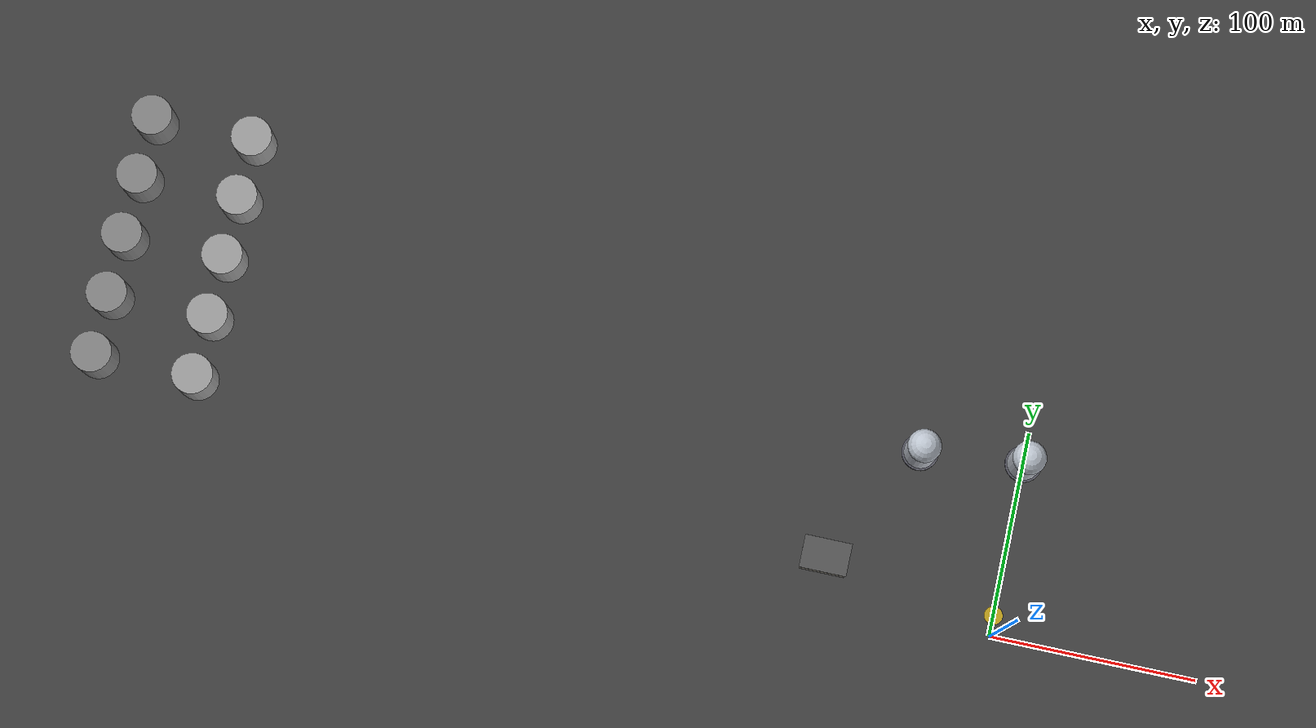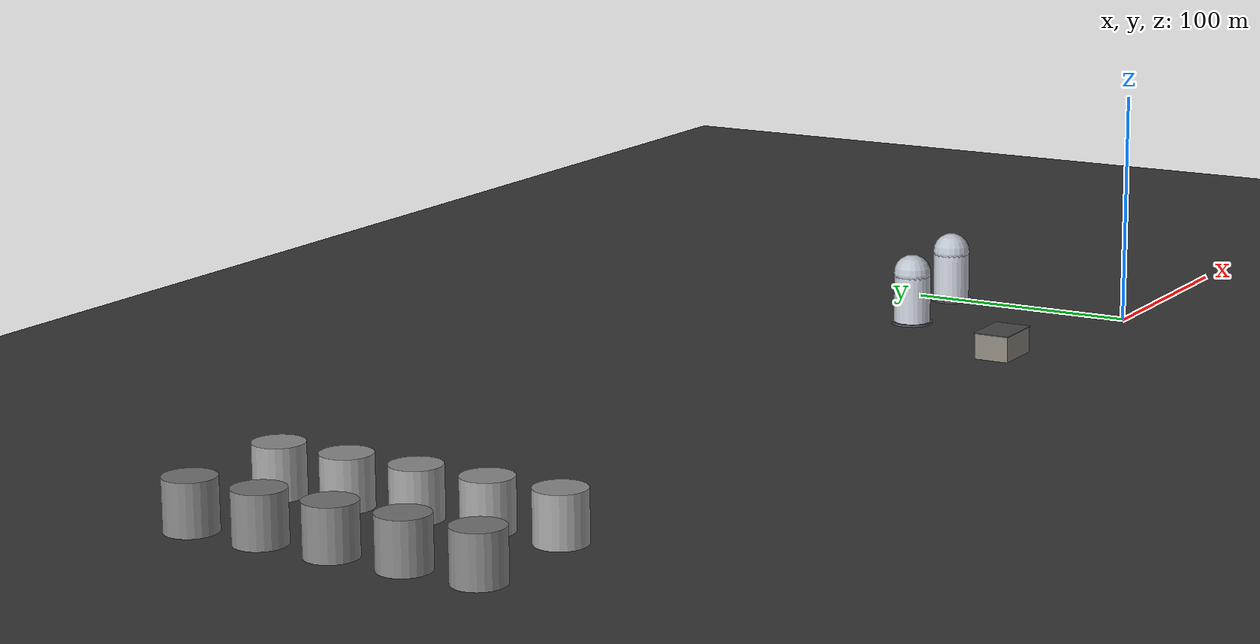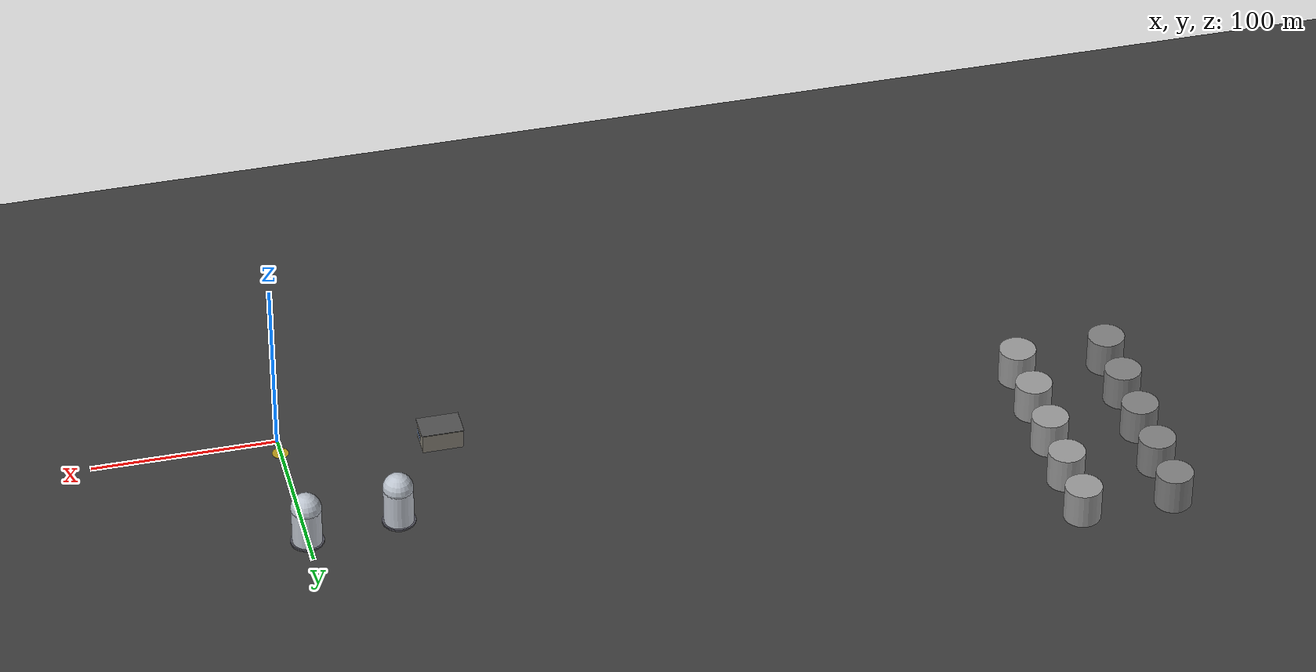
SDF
<sdf version="1.9">
 <world name="lng_terminal">
  <model name="ground">
   <static>true</static>
   <pose>0 0 -0.05 0 0 0</pose>
   <link name="l">
    <collision name="c"><geometry><box><size>2000 2000 0.1</size></box></geometry></collision>
    <visual name="v">
     <geometry><box><size>2000 2000 0.1</size></box></geometry>
     <material>
      <ambient>0.18 0.18 0.18 1</ambient>
      <diffuse>0.24 0.24 0.24 1</diffuse>
      <specular>0.03 0.03 0.03 1</specular>
      <pbr><metal><roughness>0.96</roughness><metalness>0.0</metalness></metal></pbr>
     </material>
    </visual>
   </link>
  </model>
  <model name="drone_d2">
   <static>false</static>
   <pose>0 10 0.18 0 0 0.4</pose>
   <link name="l">
    <gravity>false</gravity>
    <inertial>
     <mass>0.8</mass>
     <inertia><ixx>0.04</ixx><iyy>0.04</iyy><izz>0.04</izz><ixy>0</ixy><ixz>0</ixz><iyz>0</iyz></inertia>
    </inertial>
    <visual name="frame">
     <geometry><box><size>0.36 0.36 0.10</size></box></geometry>
     <material>
      <ambient>0.10 0.10 0.10 1</ambient>
      <diffuse>0.16 0.16 0.18 1</diffuse>
      <pbr><metal><roughness>0.30</roughness><metalness>0.7</metalness></metal></pbr>
     </material>
    </visual>
    <visual name="arm_a">
     <pose>0.18 0.18 0 0 0 0.785</pose>
     <geometry><box><size>0.55 0.05 0.04</size></box></geometry>
     <material><ambient>0.12 0.12 0.14 1</ambient><diffuse>0.18 0.18 0.22 1</diffuse></material>
    </visual>
    <visual name="arm_b">
     <pose>-0.18 0.18 0 0 0 -0.785</pose>
     <geometry><box><size>0.55 0.05 0.04</size></box></geometry>
     <material><ambient>0.12 0.12 0.14 1</ambient><diffuse>0.18 0.18 0.22 1</diffuse></material>
    </visual>
    <visual name="arm_c">
     <pose>-0.18 -0.18 0 0 0 0.785</pose>
     <geometry><box><size>0.55 0.05 0.04</size></box></geometry>
     <material><ambient>0.12 0.12 0.14 1</ambient><diffuse>0.18 0.18 0.22 1</diffuse></material>
    </visual>
    <visual name="arm_d">
     <pose>0.18 -0.18 0 0 0 -0.785</pose>
     <geometry><box><size>0.55 0.05 0.04</size></box></geometry>
     <material><ambient>0.12 0.12 0.14 1</ambient><diffuse>0.18 0.18 0.22 1</diffuse></material>
    </visual>
    <visual name="m_a">
     <pose>0.32 0.32 0.02 0 0 0</pose>
     <geometry><cylinder><radius>0.045</radius><length>0.07</length></cylinder></geometry>
     <material><ambient>0.55 0.50 0.0 1</ambient><diffuse>0.75 0.68 0.0 1</diffuse></material>
    </visual>
    <visual name="m_b">
     <pose>-0.32 0.32 0.02 0 0 0</pose>
     <geometry><cylinder><radius>0.045</radius><length>0.07</length></cylinder></geometry>
     <material><ambient>0.55 0.50 0.0 1</ambient><diffuse>0.75 0.68 0.0 1</diffuse></material>
    </visual>
    <visual name="m_c">
     <pose>-0.32 -0.32 0.02 0 0 0</pose>
     <geometry><cylinder><radius>0.045</radius><length>0.07</length></cylinder></geometry>
     <material><ambient>0.55 0.50 0.0 1</ambient><diffuse>0.75 0.68 0.0 1</diffuse></material>
    </visual>
    <visual name="m_d">
     <pose>0.32 -0.32 0.02 0 0 0</pose>
     <geometry><cylinder><radius>0.045</radius><length>0.07</length></cylinder></geometry>
     <material><ambient>0.55 0.50 0.0 1</ambient><diffuse>0.75 0.68 0.0 1</diffuse></material>
    </visual>
    <collision name="c"><geometry><box><size>0.36 0.36 0.10</size></box></geometry></collision>
   </link>
  </model>
  <model name="drone_pad">
   <static>true</static>
   <pose>0 10 0.02 0 0 0</pose>
   <link name="l">
    <visual name="v">
     <geometry><cylinder><radius>4.5</radius><length>0.04</length></cylinder></geometry>
     <material><ambient>0.58 0.48 0.08 1</ambient><diffuse>0.72 0.60 0.10 1</diffuse></material>
    </visual>
   </link>
  </model>
  <model name="tank_a1">
   <static>true</static>
   <pose>-50 80 0 0 0 0</pose>
   <link name="l">
    <collision name="c">
     <geometry><cylinder><radius>8</radius><length>22</length></cylinder></geometry>
    </collision>
    <visual name="body">
     <pose>0 0 11 0 0 0</pose>
     <geometry><cylinder><radius>8</radius><length>22</length></cylinder></geometry>
     <material>
      <ambient>0.68 0.70 0.74 1</ambient>
      <diffuse>0.76 0.78 0.82 1</diffuse>
      <specular>0.55 0.56 0.60 1</specular>
      <pbr><metal><roughness>0.22</roughness><metalness>0.88</metalness></metal></pbr>
     </material>
    </visual>
    <visual name="dome">
     <pose>0 0 22.5 0 0 0</pose>
     <geometry><sphere><radius>8.2</radius></sphere></geometry>
     <material>
      <ambient>0.65 0.68 0.72 1</ambient>
      <diffuse>0.73 0.76 0.80 1</diffuse>
      <specular>0.60 0.62 0.65 1</specular>
      <pbr><metal><roughness>0.18</roughness><metalness>0.90</metalness></metal></pbr>
     </material>
    </visual>
    <visual name="ring">
     <pose>0 0 0.5 0 0 0</pose>
     <geometry><cylinder><radius>9</radius><length>1.0</length></cylinder></geometry>
     <material>
      <ambient>0.25 0.25 0.28 1</ambient>
      <diffuse>0.32 0.32 0.36 1</diffuse>
      <specular>0.22 0.22 0.24 1</specular>
      <pbr><metal><roughness>0.45</roughness><metalness>0.75</metalness></metal></pbr>
     </material>
    </visual>
   </link>
  </model>
  <model name="tank_a2">
   <static>true</static>
   <pose>0 85 0 0 0 0</pose>
   <link name="l">
    <collision name="c">
     <geometry><cylinder><radius>8</radius><length>22</length></cylinder></geometry>
    </collision>
    <visual name="body">
     <pose>0 0 11 0 0 0</pose>
     <geometry><cylinder><radius>8</radius><length>22</length></cylinder></geometry>
     <material>
      <ambient>0.68 0.70 0.74 1</ambient>
      <diffuse>0.76 0.78 0.82 1</diffuse>
      <specular>0.55 0.56 0.60 1</specular>
      <pbr><metal><roughness>0.22</roughness><metalness>0.88</metalness></metal></pbr>
     </material>
    </visual>
    <visual name="dome">
     <pose>0 0 22.5 0 0 0</pose>
     <geometry><sphere><radius>8.2</radius></sphere></geometry>
     <material>
      <ambient>0.65 0.68 0.72 1</ambient>
      <diffuse>0.73 0.76 0.80 1</diffuse>
      <specular>0.60 0.62 0.65 1</specular>
      <pbr><metal><roughness>0.18</roughness><metalness>0.90</metalness></metal></pbr>
     </material>
    </visual>
    <visual name="ring">
     <pose>0 0 0.5 0 0 0</pose>
     <geometry><cylinder><radius>9</radius><length>1.0</length></cylinder></geometry>
     <material>
      <ambient>0.25 0.25 0.28 1</ambient>
      <diffuse>0.32 0.32 0.36 1</diffuse>
      <specular>0.22 0.22 0.24 1</specular>
      <pbr><metal><roughness>0.45</roughness><metalness>0.75</metalness></metal></pbr>
     </material>
    </visual>
   </link>
  </model>
  <model name="control_room">
   <static>true</static>
   <pose>-85 20 5.5 0 0 0</pose>
   <link name="l">
    <collision name="c"><geometry><box><size>22 15 11</size></box></geometry></collision>
    <visual name="walls">
     <geometry><box><size>22 15 11</size></box></geometry>
     <material>
      <ambient>0.42 0.40 0.37 1</ambient>
      <diffuse>0.52 0.50 0.46 1</diffuse>
      <pbr><metal><roughness>0.88</roughness><metalness>0.0</metalness></metal></pbr>
     </material>
    </visual>
    <visual name="roof">
     <pose>0 0 5.7 0 0 0</pose>
     <geometry><box><size>23 16 0.4</size></box></geometry>
     <material><ambient>0.25 0.25 0.25 1</ambient><diffuse>0.32 0.32 0.32 1</diffuse></material>
    </visual>
    <visual name="win">
     <pose>11.6 0 1.2 0 0 0</pose>
     <geometry><box><size>0.12 9 3.5</size></box></geometry>
     <material>
      <ambient>0.04 0.08 0.16 1</ambient>
      <diffuse>0.06 0.12 0.22 1</diffuse>
      <emissive>0.05 0.10 0.18 1</emissive>
     </material>
    </visual>
   </link>
  </model>
  <model name="s5_tanks_row1">
   <static>true</static>
   <pose>-400 100 0 0 0 0</pose>
   <link name="l">
    <visual name="v1">
     <pose>0 0 10 0 0 0</pose>
     <geometry><cylinder><radius>10</radius><length>20</length></cylinder></geometry>
     <material><ambient>0.6 0.6 0.6 1</ambient></material>
    </visual>
    <visual name="v2">
     <pose>0 30 10 0 0 0</pose>
     <geometry><cylinder><radius>10</radius><length>20</length></cylinder></geometry>
     <material><ambient>0.6 0.6 0.6 1</ambient></material>
    </visual>
    <visual name="v3">
     <pose>0 60 10 0 0 0</pose>
     <geometry><cylinder><radius>10</radius><length>20</length></cylinder></geometry>
     <material><ambient>0.6 0.6 0.6 1</ambient></material>
    </visual>
    <visual name="v4">
     <pose>0 -30 10 0 0 0</pose>
     <geometry><cylinder><radius>10</radius><length>20</length></cylinder></geometry>
     <material><ambient>0.6 0.6 0.6 1</ambient></material>
    </visual>
    <visual name="v5">
     <pose>0 -60 10 0 0 0</pose>
     <geometry><cylinder><radius>10</radius><length>20</length></cylinder></geometry>
     <material><ambient>0.6 0.6 0.6 1</ambient></material>
    </visual>
   </link>
  </model>
  <model name="s5_tanks_row2">
   <static>true</static>
   <pose>-450 100 0 0 0 0</pose>
   <link name="l">
    <visual name="v1">
     <pose>0 0 10 0 0 0</pose>
     <geometry><cylinder><radius>10</radius><length>20</length></cylinder></geometry>
     <material><ambient>0.5 0.5 0.5 1</ambient></material>
    </visual>
    <visual name="v2">
     <pose>0 30 10 0 0 0</pose>
     <geometry><cylinder><radius>10</radius><length>20</length></cylinder></geometry>
     <material><ambient>0.5 0.5 0.5 1</ambient></material>
    </visual>
    <visual name="v3">
     <pose>0 60 10 0 0 0</pose>
     <geometry><cylinder><radius>10</radius><length>20</length></cylinder></geometry>
     <material><ambient>0.5 0.5 0.5 1</ambient></material>
    </visual>
    <visual name="v4">
     <pose>0 -30 10 0 0 0</pose>
     <geometry><cylinder><radius>10</radius><length>20</length></cylinder></geometry>
     <material><ambient>0.5 0.5 0.5 1</ambient></material>
    </visual>
    <visual name="v5">
     <pose>0 -60 10 0 0 0</pose>
     <geometry><cylinder><radius>10</radius><length>20</length></cylinder></geometry>
     <material><ambient>0.5 0.5 0.5 1</ambient></material>
    </visual>
   </link>
  </model>
 </world>
</sdf>
